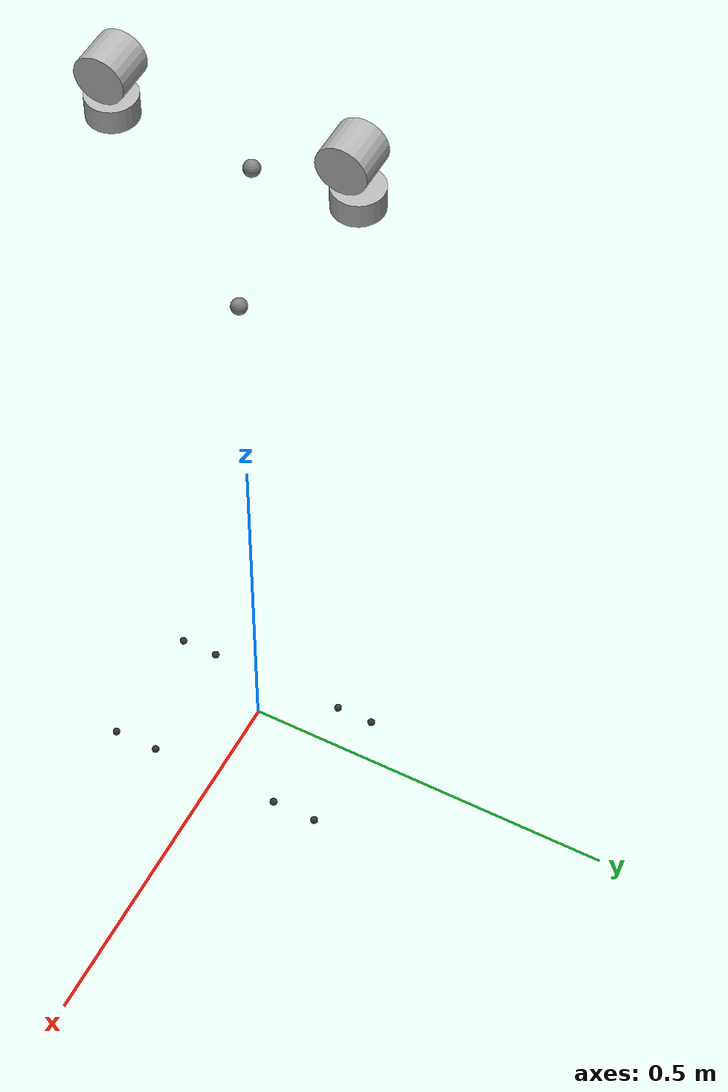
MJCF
<mujoco model="g1_29dof">
  <compiler angle="radian" />

  <default>
    <default class="torso_motor">
      <joint damping="0.05" armature="0.01" frictionloss="0.2"/>
    </default>
    <default class="leg_motor">
      <joint damping="0.05" armature="0.01" frictionloss="0.2"/>
    </default>
    <default class="ankle_motor">
      <joint damping="0.05" armature="0.01" frictionloss="0.2"/>
    </default>
    <default class="arm_motor">
      <joint damping="0.05" armature="0.01" frictionloss="0.2"/>
    </default>
    <default class="wrist_motor">
      <joint damping="0.05" armature="0.01" frictionloss="0.1"/>
    </default>

  </default>

  <asset>
    </asset>

  <worldbody>
    <body name="pelvis" pos="0 0 0.793">
      <site name="imu" size="0.01" pos="0.0 0.0 0.0" />
      <inertial pos="0 0 -0.07605" quat="1 0 -0.000399148 0" mass="3.813"
        diaginertia="0.010549 0.0093089 0.0079184" />
      <joint name="floating_base_joint" type="free" limited="false" actuatorfrclimited="false" />
      <body name="left_hip_pitch_link" pos="0 0.064452 -0.1027">
        <inertial pos="0.002741 0.047791 -0.02606" quat="0.954862 0.293964 0.0302556 0.030122"
          mass="1.35" diaginertia="0.00181517 0.00153422 0.00116212" />
        <joint name="left_hip_pitch_joint" pos="0 0 0" axis="0 1 0" range="-2.5307 2.8798"
          actuatorfrcrange="-88 88" class="leg_motor" />
        <body name="left_hip_roll_link" pos="0 0.052 -0.030465" quat="0.996179 0 -0.0873386 0">
          <inertial pos="0.029812 -0.001045 -0.087934"
            quat="0.977808 -1.97119e-05 0.205576 -0.0403793" mass="1.52"
            diaginertia="0.00254986 0.00241169 0.00148755" />
          <joint name="left_hip_roll_joint" pos="0 0 0" axis="1 0 0" range="-0.5236 2.9671"
            actuatorfrcrange="-88 88" class="leg_motor" />
          <body name="left_hip_yaw_link" pos="0.025001 0 -0.12412">
            <inertial pos="-0.057709 -0.010981 -0.15078" quat="0.600598 0.15832 0.223482 0.751181"
              mass="1.702" diaginertia="0.00776166 0.00717575 0.00160139" />
            <joint name="left_hip_yaw_joint" pos="0 0 0" axis="0 0 1" range="-2.7576 2.7576"
              actuatorfrcrange="-88 88" class="leg_motor" />
            <body name="left_knee_link" pos="-0.078273 0.0021489 -0.17734"
              quat="0.996179 0 0.0873386 0">
              <inertial pos="0.005457 0.003964 -0.12074"
                quat="0.923418 -0.0327699 0.0158246 0.382067" mass="1.932"
                diaginertia="0.0113804 0.0112778 0.00146458" />
              <joint name="left_knee_joint" pos="0 0 0" axis="0 1 0" range="-0.087267 2.8798"
                actuatorfrcrange="-139 139" class="leg_motor" />
              <body name="left_ankle_pitch_link" pos="0 -9.4445e-05 -0.30001">
                <inertial pos="-0.007269 0 0.011137" quat="0.603053 0.369225 0.369225 0.603053"
                  mass="0.074" diaginertia="1.89e-05 1.40805e-05 6.9195e-06" />
                <joint name="left_ankle_pitch_joint" pos="0 0 0" axis="0 1 0"
                  range="-0.87267 0.5236" actuatorfrcrange="-50 50"  class="ankle_motor"/>
                <body name="left_ankle_roll_link" pos="0 0 -0.017558">
                  <inertial pos="0.026505 0 -0.016425"
                    quat="-0.000481092 0.728482 -0.000618967 0.685065" mass="0.608"
                    diaginertia="0.00167218 0.0016161 0.000217621" />
                  <joint name="left_ankle_roll_joint" pos="0 0 0" axis="1 0 0"
                    range="-0.2618 0.2618" actuatorfrcrange="-50 50" class="ankle_motor"/>
                  <geom size="0.005" pos="-0.05 0.025 -0.03" rgba="0.2 0.2 0.2 1" />
                  <geom size="0.005" pos="-0.05 -0.025 -0.03" rgba="0.2 0.2 0.2 1" />
                  <geom size="0.005" pos="0.12 0.03 -0.03" rgba="0.2 0.2 0.2 1" />
                  <geom size="0.005" pos="0.12 -0.03 -0.03" rgba="0.2 0.2 0.2 1" />
                </body>
              </body>
            </body>
          </body>
        </body>
      </body>
      <body name="right_hip_pitch_link" pos="0 -0.064452 -0.1027">
        <inertial pos="0.002741 -0.047791 -0.02606" quat="0.954862 -0.293964 0.0302556 -0.030122"
          mass="1.35" diaginertia="0.00181517 0.00153422 0.00116212" />
        <joint name="right_hip_pitch_joint" pos="0 0 0" axis="0 1 0" range="-2.5307 2.8798"
          actuatorfrcrange="-88 88" class="leg_motor" />
        <body name="right_hip_roll_link" pos="0 -0.052 -0.030465" quat="0.996179 0 -0.0873386 0">
          <inertial pos="0.029812 0.001045 -0.087934" quat="0.977808 1.97119e-05 0.205576 0.0403793"
            mass="1.52" diaginertia="0.00254986 0.00241169 0.00148755" />
          <joint name="right_hip_roll_joint" pos="0 0 0" axis="1 0 0" range="-2.9671 0.5236"
            actuatorfrcrange="-88 88" class="leg_motor" />
          <body name="right_hip_yaw_link" pos="0.025001 0 -0.12412">
            <inertial pos="-0.057709 0.010981 -0.15078" quat="0.751181 0.223482 0.15832 0.600598"
              mass="1.702" diaginertia="0.00776166 0.00717575 0.00160139" />
            <joint name="right_hip_yaw_joint" pos="0 0 0" axis="0 0 1" range="-2.7576 2.7576"
              actuatorfrcrange="-88 88" class="leg_motor" />
            <body name="right_knee_link" pos="-0.078273 -0.0021489 -0.17734"
              quat="0.996179 0 0.0873386 0">
              <inertial pos="0.005457 -0.003964 -0.12074"
                quat="0.923439 0.0345276 0.0116333 -0.382012" mass="1.932"
                diaginertia="0.011374 0.0112843 0.00146452" />
              <joint name="right_knee_joint" pos="0 0 0" axis="0 1 0" range="-0.087267 2.8798"
                actuatorfrcrange="-139 139" class="leg_motor" />
              <body name="right_ankle_pitch_link" pos="0 9.4445e-05 -0.30001">
                <inertial pos="-0.007269 0 0.011137" quat="0.603053 0.369225 0.369225 0.603053"
                  mass="0.074" diaginertia="1.89e-05 1.40805e-05 6.9195e-06" />
                <joint name="right_ankle_pitch_joint" pos="0 0 0" axis="0 1 0"
                  range="-0.87267 0.5236" actuatorfrcrange="-50 50" class="ankle_motor" />
                <body name="right_ankle_roll_link" pos="0 0 -0.017558">
                  <inertial pos="0.026505 0 -0.016425"
                    quat="0.000481092 0.728482 0.000618967 0.685065" mass="0.608"
                    diaginertia="0.00167218 0.0016161 0.000217621" />
                  <joint name="right_ankle_roll_joint" pos="0 0 0" axis="1 0 0"
                    range="-0.2618 0.2618" actuatorfrcrange="-50 50" class="ankle_motor" />
                  <geom size="0.005" pos="-0.05 0.025 -0.03" rgba="0.2 0.2 0.2 1" />
                  <geom size="0.005" pos="-0.05 -0.025 -0.03" rgba="0.2 0.2 0.2 1" />
                  <geom size="0.005" pos="0.12 0.03 -0.03" rgba="0.2 0.2 0.2 1" />
                  <geom size="0.005" pos="0.12 -0.03 -0.03" rgba="0.2 0.2 0.2 1" />
                </body>
              </body>
            </body>
          </body>
        </body>
      </body>
      <body name="waist_yaw_link">
        <inertial pos="0.003964 0 0.018769" quat="-0.0178291 0.628464 0.0282471 0.777121"
          mass="0.244" diaginertia="0.000158561 0.000124229 9.67669e-05" />
        <joint name="waist_yaw_joint" pos="0 0 0" axis="0 0 1" range="-2.618 2.618"
          actuatorfrcrange="-88 88" class="torso_motor"/>
        <body name="waist_roll_link" pos="-0.0039635 0 0.035">
          <inertial pos="0 -0.000236 0.010111" quat="0.99979 0.020492 0 0" mass="0.047"
            diaginertia="7.515e-06 6.40206e-06 3.98394e-06" />
          <joint name="waist_roll_joint" pos="0 0 0" axis="1 0 0" range="-0.52 0.52"
            actuatorfrcrange="-50 50" class="torso_motor"/>
          <site name="secondary_imu" size="0.01" pos="-0.03959 -0.00224 0.13792"/>
          <body name="torso_link" pos="0 0 0.019">
            <inertial pos="0.00331658 0.000261533 0.179856"
              quat="0.999831 0.000376204 0.0179895 -0.00377704" mass="9.598"
              diaginertia="0.12407 0.111951 0.0325382" />
            <joint name="waist_pitch_joint" pos="0 0 0" axis="0 1 0" range="-0.52 0.52"
              actuatorfrcrange="-50 50" class="torso_motor"/>
            <body name="left_shoulder_pitch_link" pos="0.0039563 0.10022 0.23778"
              quat="0.990264 0.139201 1.38722e-05 -9.86868e-05">
              <inertial pos="0 0.035892 -0.011628" quat="0.654152 0.0130458 -0.326267 0.68225"
                mass="0.718" diaginertia="0.000465864 0.000432842 0.000406394" />
              <joint name="left_shoulder_pitch_joint" pos="0 0 0" axis="0 1 0"
                range="-3.0892 2.6704" actuatorfrcrange="-25 25" class="arm_motor" />
              <geom size="0.03 0.025" pos="0 0.04 -0.01" quat="0.707107 0 0.707107 0"
                type="cylinder" rgba="0.7 0.7 0.7 1" />
              <body name="left_shoulder_roll_link" pos="0 0.038 -0.013831"
                quat="0.990268 -0.139172 0 0">
                <inertial pos="-0.000227 0.00727 -0.063243"
                  quat="0.701256 -0.0196223 -0.00710317 0.712604" mass="0.643"
                  diaginertia="0.000691311 0.000618011 0.000388977" />
                <joint name="left_shoulder_roll_joint" pos="0 0 0" axis="1 0 0"
                  range="-1.5882 2.2515" actuatorfrcrange="-25 25" class="arm_motor" />
                <geom size="0.03 0.015" pos="-0.004 0.006 -0.053" type="cylinder"
                  rgba="0.7 0.7 0.7 1" />
                <body name="left_shoulder_yaw_link" pos="0 0.00624 -0.1032">
                  <inertial pos="0.010773 -0.002949 -0.072009"
                    quat="0.716879 -0.0964829 -0.0679942 0.687134" mass="0.734"
                    diaginertia="0.00106187 0.00103217 0.000400661" />
                  <joint name="left_shoulder_yaw_joint" pos="0 0 0" axis="0 0 1"
                    range="-2.618 2.618" actuatorfrcrange="-25 25" class="arm_motor" />
                  <body name="left_elbow_link" pos="0.015783 0 -0.080518">
                    <inertial pos="0.064956 0.004454 -0.010062"
                      quat="0.541765 0.636132 0.388821 0.388129" mass="0.6"
                      diaginertia="0.000443035 0.000421612 0.000259353" />
                    <joint name="left_elbow_joint" pos="0 0 0" axis="0 1 0" range="-1.0472 2.0944"
                      actuatorfrcrange="-25 25" class="arm_motor" />
                    <body name="left_wrist_roll_link" pos="0.1 0.00188791 -0.01">
                      <inertial pos="0.0171394 0.000537591 4.8864e-07"
                        quat="0.575338 0.411667 -0.574906 0.411094" mass="0.085445"
                        diaginertia="5.48211e-05 4.96646e-05 3.57798e-05" />
                      <joint name="left_wrist_roll_joint" pos="0 0 0" axis="1 0 0"
                        range="-1.97222 1.97222" actuatorfrcrange="-25 25" class="arm_motor" />
                      <body name="left_wrist_pitch_link" pos="0.038 0 0">
                        <inertial pos="0.0229999 -0.00111685 -0.00111658"
                          quat="0.249998 0.661363 0.293036 0.643608" mass="0.48405"
                          diaginertia="0.000430353 0.000429873 0.000164648" />
                        <joint name="left_wrist_pitch_joint" pos="0 0 0" axis="0 1 0"
                          range="-1.61443 1.61443" actuatorfrcrange="-5 5" class="wrist_motor" />
                        <body name="left_wrist_yaw_link" pos="0.046 0 0">
                          <inertial pos="0.0708244 0.000191745 0.00161742"
                            quat="0.510571 0.526295 0.468078 0.493188" mass="0.254576"
                            diaginertia="0.000646113 0.000559993 0.000147566" />
                          <joint name="left_wrist_yaw_joint" pos="0 0 0" axis="0 0 1"
                            range="-1.61443 1.61443" actuatorfrcrange="-5 5" class="wrist_motor" />
                          </body>
                      </body>
                    </body>
                  </body>
                </body>
              </body>
            </body>
            <body name="right_shoulder_pitch_link" pos="0.0039563 -0.10021 0.23778"
              quat="0.990264 -0.139201 1.38722e-05 9.86868e-05">
              <inertial pos="0 -0.035892 -0.011628" quat="0.68225 -0.326267 0.0130458 0.654152"
                mass="0.718" diaginertia="0.000465864 0.000432842 0.000406394" />
              <joint name="right_shoulder_pitch_joint" pos="0 0 0" axis="0 1 0"
                range="-3.0892 2.6704" actuatorfrcrange="-25 25" class="arm_motor" />
              <geom size="0.03 0.025" pos="0 -0.04 -0.01" quat="0.707107 0 0.707107 0"
                type="cylinder" rgba="0.7 0.7 0.7 1" />
              <body name="right_shoulder_roll_link" pos="0 -0.038 -0.013831"
                quat="0.990268 0.139172 0 0">
                <inertial pos="-0.000227 -0.00727 -0.063243"
                  quat="0.712604 -0.00710317 -0.0196223 0.701256" mass="0.643"
                  diaginertia="0.000691311 0.000618011 0.000388977" />
                <joint name="right_shoulder_roll_joint" pos="0 0 0" axis="1 0 0"
                  range="-2.2515 1.5882" actuatorfrcrange="-25 25" class="arm_motor" />
                <geom size="0.03 0.015" pos="-0.004 -0.006 -0.053" type="cylinder"
                  rgba="0.7 0.7 0.7 1" />
                <body name="right_shoulder_yaw_link" pos="0 -0.00624 -0.1032">
                  <inertial pos="0.010773 0.002949 -0.072009"
                    quat="0.687134 -0.0679942 -0.0964829 0.716879" mass="0.734"
                    diaginertia="0.00106187 0.00103217 0.000400661" />
                  <joint name="right_shoulder_yaw_joint" pos="0 0 0" axis="0 0 1"
                    range="-2.618 2.618" actuatorfrcrange="-25 25" class="arm_motor" />
                  <body name="right_elbow_link" pos="0.015783 0 -0.080518">
                    <inertial pos="0.064956 -0.004454 -0.010062"
                      quat="0.388129 0.388821 0.636132 0.541765" mass="0.6"
                      diaginertia="0.000443035 0.000421612 0.000259353" />
                    <joint name="right_elbow_joint" pos="0 0 0" axis="0 1 0" range="-1.0472 2.0944"
                      actuatorfrcrange="-25 25" class="arm_motor" />
                    <body name="right_wrist_roll_link" pos="0.1 -0.00188791 -0.01">
                      <inertial pos="0.0171394 -0.000537591 4.8864e-07"
                        quat="0.411667 0.575338 -0.411094 0.574906" mass="0.085445"
                        diaginertia="5.48211e-05 4.96646e-05 3.57798e-05" />
                      <joint name="right_wrist_roll_joint" pos="0 0 0" axis="1 0 0"
                        range="-1.97222 1.97222" actuatorfrcrange="-25 25" class="arm_motor" />
                      <body name="right_wrist_pitch_link" pos="0.038 0 0">
                        <inertial pos="0.0229999 0.00111685 -0.00111658"
                          quat="0.643608 0.293036 0.661363 0.249998" mass="0.48405"
                          diaginertia="0.000430353 0.000429873 0.000164648" />
                        <joint name="right_wrist_pitch_joint" pos="0 0 0" axis="0 1 0"
                          range="-1.61443 1.61443" actuatorfrcrange="-5 5" class="wrist_motor" />
                        <body name="right_wrist_yaw_link" pos="0.046 0 0">
                          <inertial pos="0.0708244 -0.000191745 0.00161742"
                            quat="0.493188 0.468078 0.526295 0.510571" mass="0.254576"
                            diaginertia="0.000646113 0.000559993 0.000147566" />
                          <joint name="right_wrist_yaw_joint" pos="0 0 0" axis="0 0 1"
                            range="-1.61443 1.61443" actuatorfrcrange="-5 5" class="wrist_motor" />
                          </body>
                      </body>
                    </body>
                  </body>
                </body>
              </body>
            </body>
          </body>
        </body>
      </body>
    </body>
  </worldbody>

  <actuator>
    <motor name="left_hip_pitch" joint="left_hip_pitch_joint" ctrlrange="-88 88" />
    <motor name="left_hip_roll" joint="left_hip_roll_joint" ctrlrange="-88 88" />
    <motor name="left_hip_yaw" joint="left_hip_yaw_joint" ctrlrange="-88 88" />
    <motor name="left_knee" joint="left_knee_joint" ctrlrange="-139 139" />
    <motor name="left_ankle_pitch" joint="left_ankle_pitch_joint" ctrlrange="-50 50" />
    <motor name="left_ankle_roll" joint="left_ankle_roll_joint" ctrlrange="-50 50" />

    <motor name="right_hip_pitch" joint="right_hip_pitch_joint" ctrlrange="-88 88" />
    <motor name="right_hip_roll" joint="right_hip_roll_joint" ctrlrange="-88 88" />
    <motor name="right_hip_yaw" joint="right_hip_yaw_joint" ctrlrange="-88 88" />
    <motor name="right_knee" joint="right_knee_joint" ctrlrange="-139 139" />
    <motor name="right_ankle_pitch" joint="right_ankle_pitch_joint" ctrlrange="-50 50" />
    <motor name="right_ankle_roll" joint="right_ankle_roll_joint" ctrlrange="-50 50" />

    <motor name="waist_yaw" joint="waist_yaw_joint" ctrlrange="-88 88" />
    <motor name="waist_roll" joint="waist_roll_joint" ctrlrange="-50 50" />
    <motor name="waist_pitch" joint="waist_pitch_joint" ctrlrange="-50 50" />

    <motor name="left_shoulder_pitch" joint="left_shoulder_pitch_joint" ctrlrange="-25 25" />
    <motor name="left_shoulder_roll" joint="left_shoulder_roll_joint" ctrlrange="-25 25" />
    <motor name="left_shoulder_yaw" joint="left_shoulder_yaw_joint" ctrlrange="-25 25" />
    <motor name="left_elbow" joint="left_elbow_joint" ctrlrange="-25 25" />
    <motor name="left_wrist_roll" joint="left_wrist_roll_joint" ctrlrange="-25 25" />
    <motor name="left_wrist_pitch" joint="left_wrist_pitch_joint" ctrlrange="-5 5" />
    <motor name="left_wrist_yaw" joint="left_wrist_yaw_joint" ctrlrange="-5 5" />

    <motor name="right_shoulder_pitch" joint="right_shoulder_pitch_joint" ctrlrange="-25 25" />
    <motor name="right_shoulder_roll" joint="right_shoulder_roll_joint" ctrlrange="-25 25" />
    <motor name="right_shoulder_yaw" joint="right_shoulder_yaw_joint" ctrlrange="-25 25" />
    <motor name="right_elbow" joint="right_elbow_joint" ctrlrange="-25 25" />
    <motor name="right_wrist_roll" joint="right_wrist_roll_joint" ctrlrange="-25 25" />
    <motor name="right_wrist_pitch" joint="right_wrist_pitch_joint" ctrlrange="-5 5" />
    <motor name="right_wrist_yaw" joint="right_wrist_yaw_joint" ctrlrange="-5 5" />
  </actuator>

  <sensor>
    <jointpos name="left_hip_pitch_pos" joint="left_hip_pitch_joint" />
    <jointpos name="left_hip_roll_pos" joint="left_hip_roll_joint" />
    <jointpos name="left_hip_yaw_pos" joint="left_hip_yaw_joint" />
    <jointpos name="left_knee_pos" joint="left_knee_joint" />
    <jointpos name="left_ankle_pitch_pos" joint="left_ankle_pitch_joint" />
    <jointpos name="left_ankle_roll_pos" joint="left_ankle_roll_joint" />
    <jointpos name="right_hip_pitch_pos" joint="right_hip_pitch_joint" />
    <jointpos name="right_hip_roll_pos" joint="right_hip_roll_joint" />
    <jointpos name="right_hip_yaw_pos" joint="right_hip_yaw_joint" />
    <jointpos name="right_knee_pos" joint="right_knee_joint" />
    <jointpos name="right_ankle_pitch_pos" joint="right_ankle_pitch_joint" />
    <jointpos name="right_ankle_roll_pos" joint="right_ankle_roll_joint" />
    <jointpos name="waist_yaw_pos" joint="waist_yaw_joint" />
    <jointpos name="waist_roll_pos" joint="waist_roll_joint" />
    <jointpos name="waist_pitch_pos" joint="waist_pitch_joint" />
    <jointpos name="left_shoulder_pitch_pos" joint="left_shoulder_pitch_joint" />
    <jointpos name="left_shoulder_roll_pos" joint="left_shoulder_roll_joint" />
    <jointpos name="left_shoulder_yaw_pos" joint="left_shoulder_yaw_joint" />
    <jointpos name="left_elbow_pos" joint="left_elbow_joint" />
    <jointpos name="left_wrist_roll_pos" joint="left_wrist_roll_joint" />
    <jointpos name="left_wrist_pitch_pos" joint="left_wrist_pitch_joint" />
    <jointpos name="left_wrist_yaw_pos" joint="left_wrist_yaw_joint" />
    <jointpos name="right_shoulder_pitch_pos" joint="right_shoulder_pitch_joint" />
    <jointpos name="right_shoulder_roll_pos" joint="right_shoulder_roll_joint" />
    <jointpos name="right_shoulder_yaw_pos" joint="right_shoulder_yaw_joint" />
    <jointpos name="right_elbow_pos" joint="right_elbow_joint" />
    <jointpos name="right_wrist_roll_pos" joint="right_wrist_roll_joint" />
    <jointpos name="right_wrist_pitch_pos" joint="right_wrist_pitch_joint" />
    <jointpos name="right_wrist_yaw_pos" joint="right_wrist_yaw_joint" />

    <jointvel name="left_hip_pitch_vel" joint="left_hip_pitch_joint" />
    <jointvel name="left_hip_roll_vel" joint="left_hip_roll_joint" />
    <jointvel name="left_hip_yaw_vel" joint="left_hip_yaw_joint" />
    <jointvel name="left_knee_vel" joint="left_knee_joint" />
    <jointvel name="left_ankle_pitch_vel" joint="left_ankle_pitch_joint" />
    <jointvel name="left_ankle_roll_vel" joint="left_ankle_roll_joint" />
    <jointvel name="right_hip_pitch_vel" joint="right_hip_pitch_joint" />
    <jointvel name="right_hip_roll_vel" joint="right_hip_roll_joint" />
    <jointvel name="right_hip_yaw_vel" joint="right_hip_yaw_joint" />
    <jointvel name="right_knee_vel" joint="right_knee_joint" />
    <jointvel name="right_ankle_pitch_vel" joint="right_ankle_pitch_joint" />
    <jointvel name="right_ankle_roll_vel" joint="right_ankle_roll_joint" />
    <jointvel name="waist_yaw_vel" joint="waist_yaw_joint" />
    <jointvel name="waist_roll_vel" joint="waist_roll_joint" />
    <jointvel name="waist_pitch_vel" joint="waist_pitch_joint" />
    <jointvel name="left_shoulder_pitch_vel" joint="left_shoulder_pitch_joint" />
    <jointvel name="left_shoulder_roll_vel" joint="left_shoulder_roll_joint" />
    <jointvel name="left_shoulder_yaw_vel" joint="left_shoulder_yaw_joint" />
    <jointvel name="left_elbow_vel" joint="left_elbow_joint" />
    <jointvel name="left_wrist_roll_vel" joint="left_wrist_roll_joint" />
    <jointvel name="left_wrist_pitch_vel" joint="left_wrist_pitch_joint" />
    <jointvel name="left_wrist_yaw_vel" joint="left_wrist_yaw_joint" />
    <jointvel name="right_shoulder_pitch_vel" joint="right_shoulder_pitch_joint" />
    <jointvel name="right_shoulder_roll_vel" joint="right_shoulder_roll_joint" />
    <jointvel name="right_shoulder_yaw_vel" joint="right_shoulder_yaw_joint" />
    <jointvel name="right_elbow_vel" joint="right_elbow_joint" />
    <jointvel name="right_wrist_roll_vel" joint="right_wrist_roll_joint" />
    <jointvel name="right_wrist_pitch_vel" joint="right_wrist_pitch_joint" />
    <jointvel name="right_wrist_yaw_vel" joint="right_wrist_yaw_joint" />

    <jointactuatorfrc name="left_hip_pitch_torque" joint="left_hip_pitch_joint" />
    <jointactuatorfrc name="left_hip_roll_torque" joint="left_hip_roll_joint" />
    <jointactuatorfrc name="left_hip_yaw_torque" joint="left_hip_yaw_joint" />
    <jointactuatorfrc name="left_knee_torque" joint="left_knee_joint" />
    <jointactuatorfrc name="left_ankle_pitch_torque" joint="left_ankle_pitch_joint" />
    <jointactuatorfrc name="left_ankle_roll_torque" joint="left_ankle_roll_joint" />
    <jointactuatorfrc name="right_hip_pitch_torque" joint="right_hip_pitch_joint" />
    <jointactuatorfrc name="right_hip_roll_torque" joint="right_hip_roll_joint" />
    <jointactuatorfrc name="right_hip_yaw_torque" joint="right_hip_yaw_joint" />
    <jointactuatorfrc name="right_knee_torque" joint="right_knee_joint" />
    <jointactuatorfrc name="right_ankle_pitch_torque" joint="right_ankle_pitch_joint" />
    <jointactuatorfrc name="right_ankle_roll_torque" joint="right_ankle_roll_joint" />
    <jointactuatorfrc name="waist_yaw_torque" joint="waist_yaw_joint" />
    <jointactuatorfrc name="waist_roll_torque" joint="waist_roll_joint" />
    <jointactuatorfrc name="waist_pitch_torque" joint="waist_pitch_joint" />
    <jointactuatorfrc name="left_shoulder_pitch_torque" joint="left_shoulder_pitch_joint" />
    <jointactuatorfrc name="left_shoulder_roll_torque" joint="left_shoulder_roll_joint" />
    <jointactuatorfrc name="left_shoulder_yaw_torque" joint="left_shoulder_yaw_joint" />
    <jointactuatorfrc name="left_elbow_torque" joint="left_elbow_joint" />
    <jointactuatorfrc name="left_wrist_roll_torque" joint="left_wrist_roll_joint" />
    <jointactuatorfrc name="left_wrist_pitch_torque" joint="left_wrist_pitch_joint" />
    <jointactuatorfrc name="left_wrist_yaw_torque" joint="left_wrist_yaw_joint" />
    <jointactuatorfrc name="right_shoulder_pitch_torque" joint="right_shoulder_pitch_joint" />
    <jointactuatorfrc name="right_shoulder_roll_torque" joint="right_shoulder_roll_joint" />
    <jointactuatorfrc name="right_shoulder_yaw_torque" joint="right_shoulder_yaw_joint" />
    <jointactuatorfrc name="right_elbow_torque" joint="right_elbow_joint" />
    <jointactuatorfrc name="right_wrist_roll_torque" joint="right_wrist_roll_joint" />
    <jointactuatorfrc name="right_wrist_pitch_torque" joint="right_wrist_pitch_joint" />
    <jointactuatorfrc name="right_wrist_yaw_torque" joint="right_wrist_yaw_joint" />

    <framequat name="imu_quat" objtype="site" objname="imu" />
    <gyro name="imu_gyro" site="imu" />
    <accelerometer name="imu_acc" site="imu" />

    <framepos name="frame_pos" objtype="site" objname="imu" />
    <framelinvel name="frame_vel" objtype="site" objname="imu" />

    <framequat name="secondary_imu_quat" objtype="site" objname="secondary_imu" />
    <gyro name="secondary_imu_gyro" site="secondary_imu" noise="5e-4" cutoff="34.9"/>
    <accelerometer name="secondary_imu_acc" site="secondary_imu" noise="1e-2" cutoff="157"/>
  </sensor>

</mujoco>
